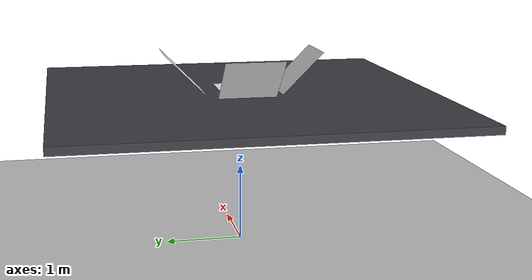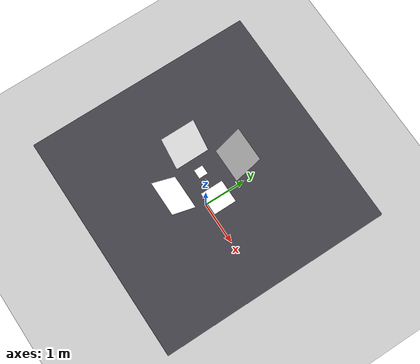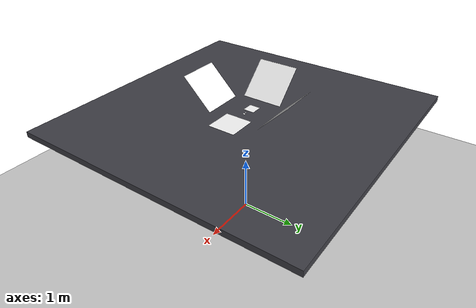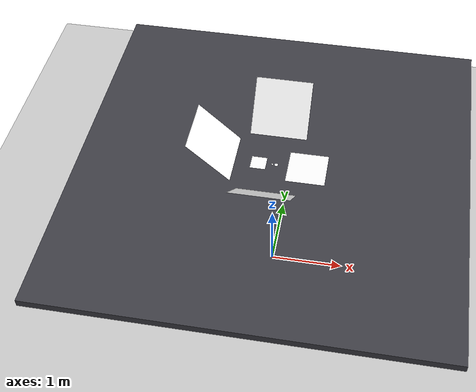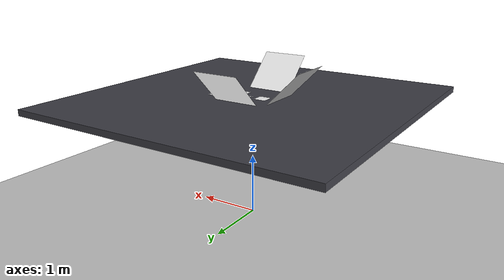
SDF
<?xml version="1.0" encoding="UTF-8"?>
<sdf version="1.9">
  <!-- 保持 world 名称为 aruco，使现有相机话题和检测器配置无需修改。 -->
  <world name="aruco">
    <physics type="ode">
      <max_step_size>0.004</max_step_size>
      <real_time_factor>1.0</real_time_factor>
      <real_time_update_rate>250</real_time_update_rate>
    </physics>
    <gravity>0 0 -9.8</gravity>
    <magnetic_field>6e-06 2.3e-05 -4.2e-05</magnetic_field>
    <atmosphere type="adiabatic"/>
    <scene>
      <grid>false</grid>
      <ambient>0.4 0.4 0.4 1</ambient>
      <background>0.7 0.7 0.7 1</background>
      <shadows>true</shadows>
    </scene>

    <model name="ground_plane">
      <static>true</static>
      <link name="link">
        <collision name="collision">
          <geometry>
            <plane>
              <normal>0 0 1</normal>
              <size>100 100</size>
            </plane>
          </geometry>
        </collision>
        <visual name="visual">
          <geometry>
            <plane>
              <normal>0 0 1</normal>
              <size>100 100</size>
            </plane>
          </geometry>
          <material>
            <ambient>0.8 0.8 0.8 1</ambient>
            <diffuse>0.8 0.8 0.8 1</diffuse>
            <specular>0.2 0.2 0.2 1</specular>
          </material>
        </visual>
      </link>
    </model>

    <light name="sunUTC" type="directional">
      <pose>0 0 500 0 0 0</pose>
      <cast_shadows>true</cast_shadows>
      <intensity>1</intensity>
      <direction>0.001 0.625 -0.78</direction>
      <diffuse>0.904 0.904 0.904 1</diffuse>
      <specular>0.271 0.271 0.271 1</specular>
      <attenuation>
        <range>2000</range>
        <linear>0</linear>
        <constant>1</constant>
        <quadratic>0</quadratic>
      </attenuation>
    </light>

    <spherical_coordinates>
      <surface_model>EARTH_WGS84</surface_model>
      <world_frame_orientation>ENU</world_frame_orientation>
      <latitude_deg>47.397971057728974</latitude_deg>
      <longitude_deg>8.546163739800146</longitude_deg>
      <elevation>0</elevation>
    </spherical_coordinates>

    <include>
      <uri>model://moving_deck</uri>
    </include>
  </world>
</sdf>

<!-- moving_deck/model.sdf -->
<sdf version="1.9">
  <model name="moving_deck">
    <!-- 模型原点位于甲板表面中心，使 Ground Truth 直接表示着陆平面。 -->
    <pose>0 0 2 0 0 0</pose>
    <static>false</static>
    <self_collide>false</self_collide>

    <link name="moving_deck">
      <!-- moving-deck simulation 只研究水平运动；禁用重力，水平接触仍由物理引擎处理。 -->
      <gravity>false</gravity>
      <inertial>
        <pose>0 0 -0.05 0 0 0</pose>
        <mass>10000</mass>
        <inertia>
          <ixx>20841.6667</ixx>
          <iyy>20841.6667</iyy>
          <izz>41666.6667</izz>
        </inertia>
      </inertial>

      <collision name="deck_collision">
        <pose>0 0 -0.05 0 0 0</pose>
        <geometry>
          <box>
            <size>5 5 0.1</size>
          </box>
        </geometry>
        <surface>
          <friction>
            <ode>
              <mu>1.0</mu>
              <mu2>1.0</mu2>
            </ode>
          </friction>
        </surface>
      </collision>

      <visual name="deck_visual">
        <pose>0 0 -0.05 0 0 0</pose>
        <geometry>
          <box>
            <size>5 5 0.1</size>
          </box>
        </geometry>
        <material>
          <ambient>0.25 0.25 0.28 1</ambient>
          <diffuse>0.25 0.25 0.28 1</diffuse>
          <specular>0.05 0.05 0.05 1</specular>
        </material>
      </visual>

      <!-- 远距大 Marker 偏置布置；检测器会将其位姿补偿回甲板中心。 -->
      <visual name="aruco_marker_far_visual">
        <pose>0.45 0 0.001 0 0 0</pose>
        <cast_shadows>false</cast_shadows>
        <geometry>
          <plane>
            <normal>0 0 1</normal>
            <size>0.5 0.5</size>
          </plane>
        </geometry>
        <material>
          <diffuse>1 1 1 1</diffuse>
          <specular>0.4 0.4 0.4 1</specular>
          <pbr>
            <metal>
              <albedo_map>model://arucotag/arucotag.png</albedo_map>
            </metal>
          </pbr>
        </material>
      </visual>

      <!-- 远距非共面副 Marker：与 ID0 联合 PnP，消除近正视单平面法向歧义。 -->
      <visual name="aruco_marker_far_secondary_visual">
        <pose>-0.75 0 0.2851650429449553 0 0.7853981633974483 0</pose>
        <cast_shadows>false</cast_shadows>
        <geometry>
          <plane>
            <normal>0 0 1</normal>
            <size>0.75 0.75</size>
          </plane>
        </geometry>
        <material>
          <diffuse>1 1 1 1</diffuse>
          <specular>0.4 0.4 0.4 1</specular>
          <pbr>
            <metal>
              <albedo_map>model://moving_deck/aruco_id4.pgm</albedo_map>
            </metal>
          </pbr>
        </material>
      </visual>

      <visual name="aruco_marker_far_secondary_roll_positive_visual">
        <pose>0 0.75 0.2851650429449553 0.7853981633974483 0 0</pose>
        <cast_shadows>false</cast_shadows>
        <geometry>
          <plane>
            <normal>0 0 1</normal>
            <size>0.75 0.75</size>
          </plane>
        </geometry>
        <material>
          <diffuse>1 1 1 1</diffuse>
          <specular>0.4 0.4 0.4 1</specular>
          <pbr>
            <metal>
              <albedo_map>model://moving_deck/aruco_id5.pgm</albedo_map>
            </metal>
          </pbr>
        </material>
      </visual>

      <visual name="aruco_marker_far_secondary_roll_negative_visual">
        <pose>0 -0.75 0.2851650429449553 -0.7853981633974483 0 0</pose>
        <cast_shadows>false</cast_shadows>
        <geometry>
          <plane>
            <normal>0 0 1</normal>
            <size>0.75 0.75</size>
          </plane>
        </geometry>
        <material>
          <diffuse>1 1 1 1</diffuse>
          <specular>0.4 0.4 0.4 1</specular>
          <pbr>
            <metal>
              <albedo_map>model://moving_deck/aruco_id6.pgm</albedo_map>
            </metal>
          </pbr>
        </material>
      </visual>

      <!-- 中距 Marker 偏置到甲板左侧，为中心超近距 Marker 留出几何空间。 -->
      <visual name="aruco_marker_near_visual">
        <pose>-0.18 0 0.002 0 0 0</pose>
        <cast_shadows>false</cast_shadows>
        <geometry>
          <plane>
            <normal>0 0 1</normal>
            <size>0.20 0.20</size>
          </plane>
        </geometry>
        <material>
          <diffuse>1 1 1 1</diffuse>
          <specular>0.4 0.4 0.4 1</specular>
          <pbr>
            <metal>
              <albedo_map>model://moving_deck/aruco_id1.pgm</albedo_map>
            </metal>
          </pbr>
        </material>
      </visual>

      <!-- 近距 Marker 轻微侧移，为中心超近距 Marker 留出几何空间。 -->
      <visual name="aruco_marker_ultra_near_visual">
        <pose>0.05 0 0.003 0 0 0</pose>
        <cast_shadows>false</cast_shadows>
        <geometry>
          <plane>
            <normal>0 0 1</normal>
            <size>0.04 0.04</size>
          </plane>
        </geometry>
        <material>
          <diffuse>1 1 1 1</diffuse>
          <specular>0.4 0.4 0.4 1</specular>
          <pbr>
            <metal>
              <albedo_map>model://moving_deck/aruco_id2.pgm</albedo_map>
            </metal>
          </pbr>
        </material>
      </visual>

      <!-- 最末端超近距 Marker 位于甲板中心，覆盖触地阈值附近视场。 -->
      <visual name="aruco_marker_contact_visual">
        <pose>0 0 0.004 0 0 0</pose>
        <cast_shadows>false</cast_shadows>
        <geometry>
          <plane>
            <normal>0 0 1</normal>
            <size>0.02 0.02</size>
          </plane>
        </geometry>
        <material>
          <diffuse>1 1 1 1</diffuse>
          <specular>0.4 0.4 0.4 1</specular>
          <pbr>
            <metal>
              <albedo_map>model://moving_deck/aruco_id3.pgm</albedo_map>
            </metal>
          </pbr>
        </material>
      </visual>
    </link>

    <plugin
      filename="gz-sim-velocity-control-system"
      name="gz::sim::systems::VelocityControl">
    </plugin>
    <plugin
      filename="gz-sim-odometry-publisher-system"
      name="gz::sim::systems::OdometryPublisher">
      <odom_frame>world</odom_frame>
      <robot_base_frame>moving_deck</robot_base_frame>
      <dimensions>3</dimensions>
      <odom_publish_frequency>50</odom_publish_frequency>
      <odom_topic>/simulation/deck/ground_truth_raw</odom_topic>
    </plugin>
  </model>
</sdf>
